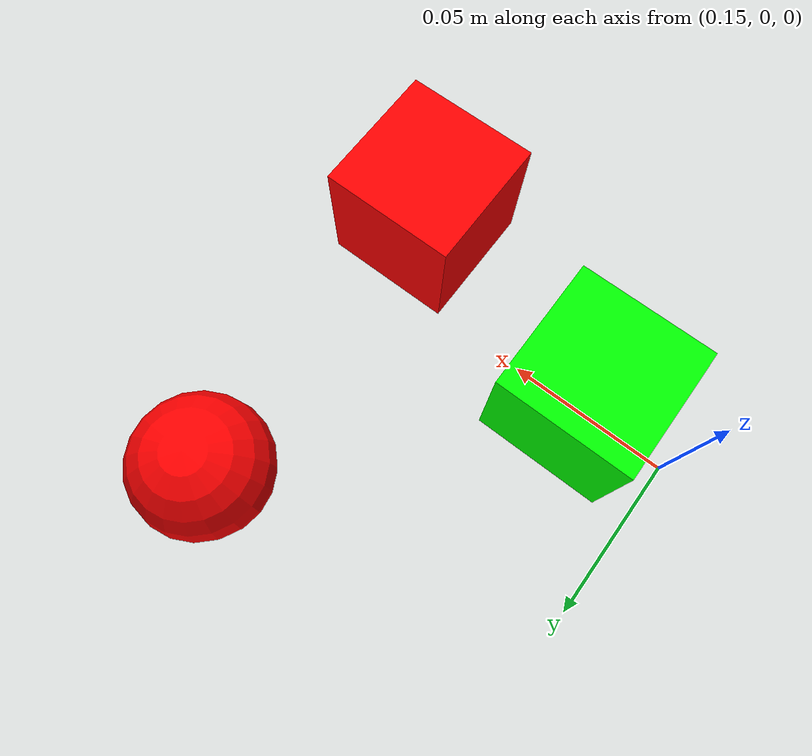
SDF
<?xml version="1.0" ?>
<sdf version="1.8">
  <world name="test_stand">
    <plugin filename="gz-sim-physics-system" name="gz::sim::systems::Physics"/>
    <plugin filename="gz-sim-user-commands-system" name="gz::sim::systems::UserCommands"/>
    <plugin filename="gz-sim-scene-broadcaster-system" name="gz::sim::systems::SceneBroadcaster"/>
    <plugin filename="gz-sim-sensors-system" name="gz::sim::systems::Sensors"><render_engine>ogre2</render_engine></plugin>

    <light type="directional" name="sun"><cast_shadows>true</cast_shadows><pose>0 0 10 0 0 0</pose></light>

    <model name="red_cube">
      <pose>0.25 -0.02 0.02 0 0 0</pose>
      <link name="link">
        <collision name="col"><geometry><box><size>0.04 0.04 0.04</size></box></geometry></collision>
        <visual name="vis"><geometry><box><size>0.04 0.04 0.04</size></box></geometry>
          <material><ambient>1 0 0 1</ambient><diffuse>1 0 0 1</diffuse></material>
        </visual>
      </link>
    </model>

    <model name="green_cube">
      <pose>0.18 0.0 0.02 0 0 0</pose>
      <link name="link">
        <collision name="col"><geometry><box><size>0.04 0.04 0.04</size></box></geometry></collision>
        <visual name="vis"><geometry><box><size>0.04 0.04 0.04</size></box></geometry>
          <material><ambient>0 1 0 1</ambient><diffuse>0 1 0 1</diffuse></material>
        </visual>
      </link>
    </model>

    <model name="red_sphere">
      <pose>0.25 0.08 0.02 0 0 0</pose>
      <link name="link">
        <visual name="vis"><geometry><sphere><radius>0.02</radius></sphere></geometry>
          <material><ambient>1 0 0 1</ambient><diffuse>1 0 0 1</diffuse></material>
        </visual>
      </link>
    </model>
  </world>
</sdf>
